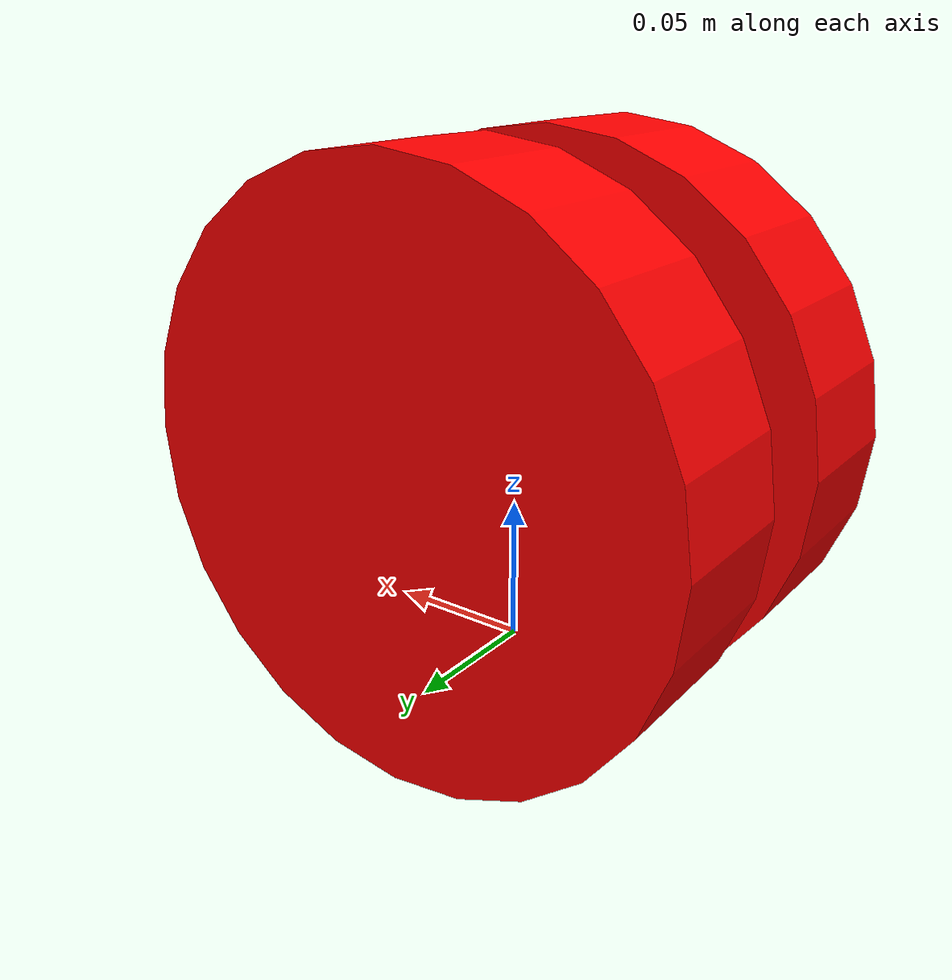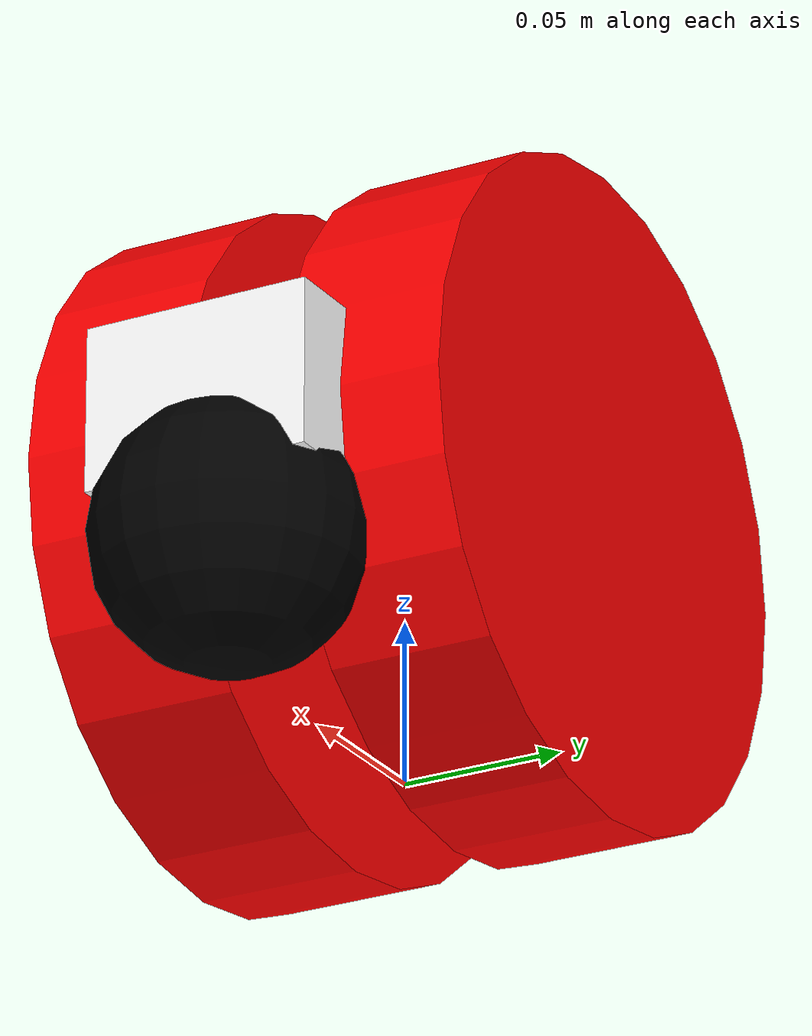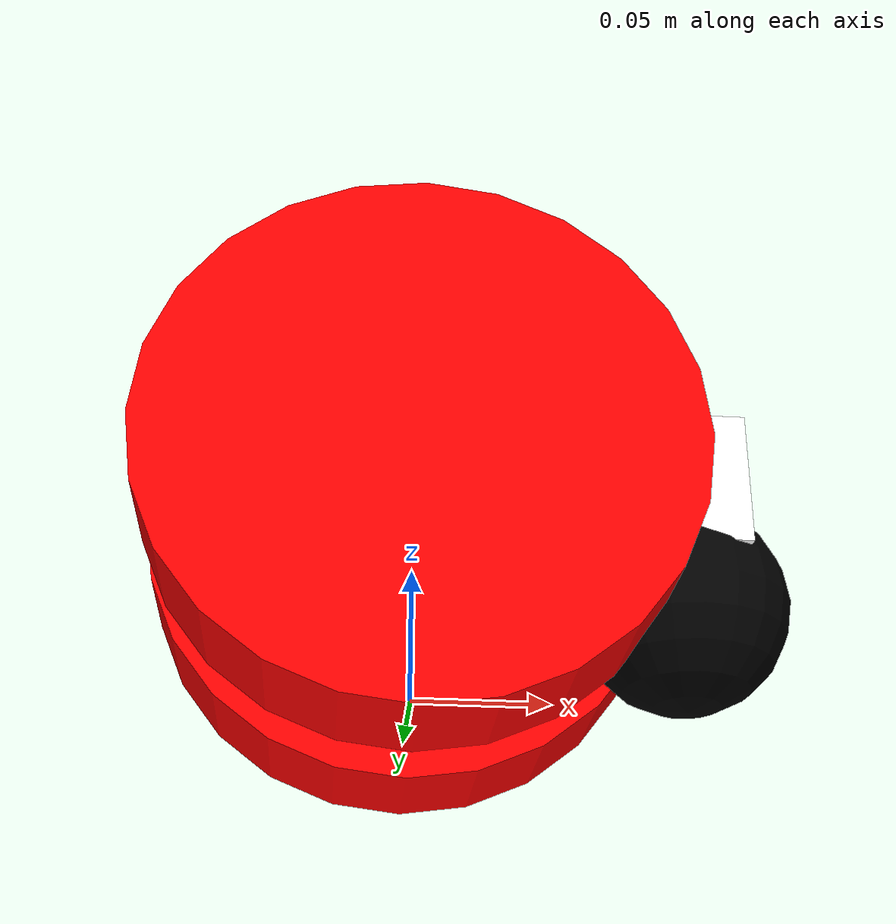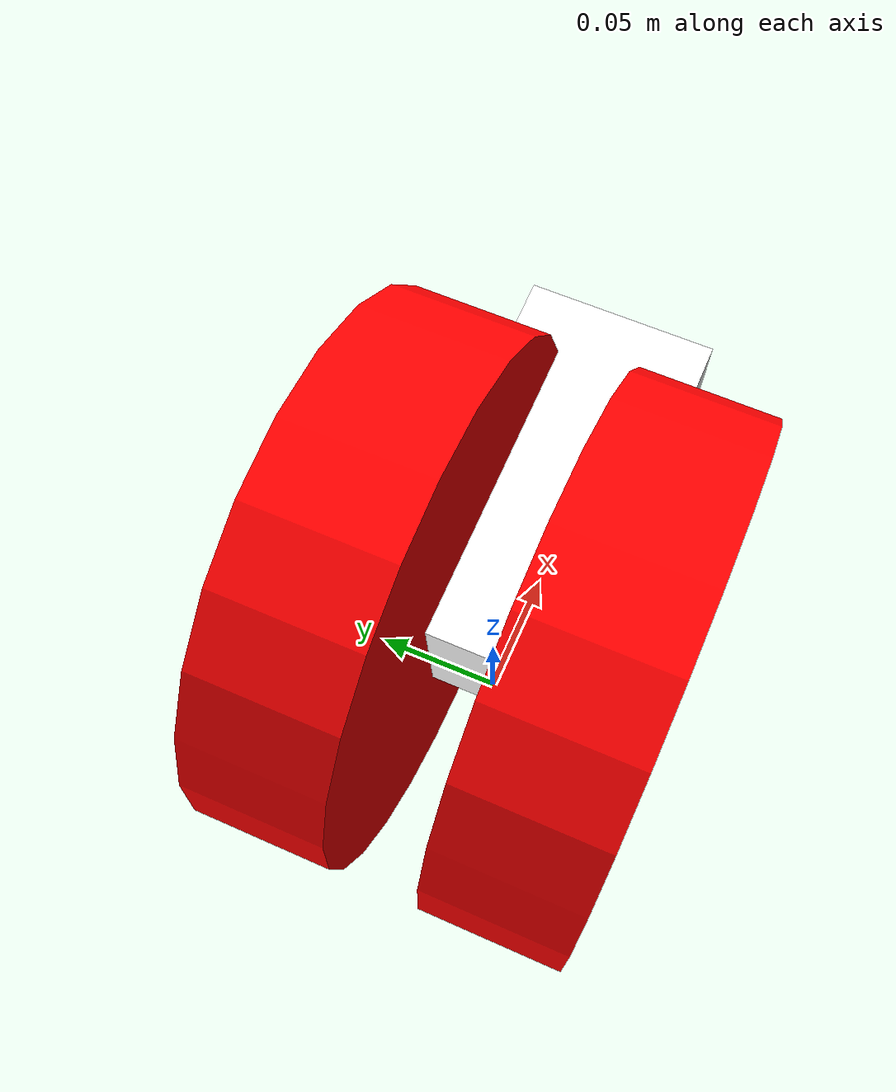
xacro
<?xml version="1.0"?>
<robot name="robo_gazebo" xmlns:xacro="http://ros.org/wiki/xacro">
  <xacro:include filename="$(find gazebo_sim)/urdf/color.xacro"/>
  <xacro:include filename="$(find gazebo_sim)/urdf/wheel_macro.xacro"/>
  <xacro:include filename="$(find gazebo_sim)/urdf/caster_macro.xacro"/>

  <xacro:wheel_macro prefix="left_wheel"  parent="base_link" xyz="-0.05 0.041 0"/>
  <xacro:wheel_macro prefix="right_wheel" parent="base_link" xyz="-0.05 -0.041 0"/>
  <xacro:ball_macro prefix="front_caster" parent="base_link" xyz="0.05 0 -0.03825"/>

  <xacro:property name="x" value="0.14"/>
  <xacro:property name="y" value="0.07"/>
  <xacro:property name="z" value="0.05"/>
  <xacro:property name="mass" value="1.0"/>

  <link name="dummy"/>

  <joint name="base_joint" type="fixed">
    <parent link="dummy"/>
    <child link="base_link"/>
    <origin xyz="0.05 0 0.0765" rpy="0 0 0"/>
  </joint>

  <link name="base_link">

    <inertial>
     <origin xyz="0 0 0" rpy="0 0 0"/>
     <mass value="${mass}"/>
     <inertia ixx="${mass*((y**2)+(z**2))/12}" ixy="0.0" ixz="0.0"
              iyy="${mass*((z**2)+(x**2))/12}" iyz="0.0"
              izz="${mass*((x**2)+(y**2))/12}"/>
    </inertial>

    <visual>
      <origin xyz="0 0 0" rpy="0 0 0" />
      <geometry>
        <box size="${x} ${y} ${z}" />
      </geometry>
      <material name="white" />
    </visual>

    <collision>
     <origin xyz="0 0 0" rpy="0 0 0"/>
     <geometry>
      <box size="${x} ${y} ${z}"/>
     </geometry>
    </collision>

  </link>

  <gazebo reference="base_link">
   <material>Gazebo/Gray</material>
   <gravity>true</gravity>
  </gazebo>

  <gazebo>
    <plugin name="gazebo_ros_control" filename="libgazebo_ros_control.so">
      <robotNamespace>/robot_gazebo</robotNamespace>
      <legacyModeNS>true</legacyModeNS>
    </plugin>
  </gazebo>

</robot>

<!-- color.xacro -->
<robot xmlns:xacro="http://ros.org/wiki/xacro">

  <material name="gray">
    <color rgba="0.5 0.5 0.5 3"/>
  </material>

  <material name="red">
    <color rgba="1.0 0.0 0.0 2"/>
  </material>

  <material name="green">
   <color rgba="0 1.0 0 2"/>
  </material>

  <material name="white">
   <color rgba="1.0 1.0 1.0 2.0"/>
  </material>

  <material name="black">
   <color rgba="0.0 0.0 0.0 2.0"/>
  </material>

</robot>

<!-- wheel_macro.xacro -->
<robot xmlns:xacro="http://ros.org/wiki/xacro">

  <xacro:property name="radius" value="0.1"/>
  <xacro:property name="length" value="0.05"/>
  <xacro:property name="mass" value="0.1"/>

  <xacro:macro name="wheel_macro" params="parent prefix xyz">

    <joint name="${prefix}_joint" type="continuous">
      <origin xyz="${xyz}" rpy="${radians(-90)} 0 0"/>
      <parent link="${parent}"/>
      <child  link="${prefix}_link"/>
      <axis xyz="0 0 1" />
    </joint>

    <transmission name="${prefix}_trans" type="SimpleTransmission">
      <type>transmission_interface/SimpleTransmission</type>
      <joint name="${prefix}_joint">
        <hardwareInterface>hardware_interface/VelocityJointInterface</hardwareInterface>
      </joint>
      <actuator name="${prefix}_motor">
        <mechanicalReduction>1</mechanicalReduction>
      </actuator>
    </transmission>

    <link name="${prefix}_link">
      <inertial>
       <origin xyz="0 0 0" rpy="0 0 0"/>
       <mass value="${mass}"/>
       <inertia ixx="${mass*(3*(radius**2)+(length**2))/12}" ixy="0.0" ixz="0.0"
                iyy="${mass*(3*(radius**2)+(length**2))/12}" iyz="0.0"
                izz="${(mass*(radius**2))/2}"/>
      </inertial>
      <visual>
        <geometry>
          <cylinder radius="${radius}" length="${length}" />
        </geometry>
        <material name="red"/>
      </visual>
      <collision>
       <geometry>
        <cylinder radius="${radius}" length="${length}"/>
       </geometry>
      </collision>
    </link>

    <gazebo reference="${prefix}_link">
     <material>Gazebo/Red</material>
     <mu1 value="1.0"/>
     <mu2 value="1.0"/>
     <kp value="10000000.0" />
     <kd value="1.0" />
    </gazebo>

  </xacro:macro>

</robot>

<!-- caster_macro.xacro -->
<robot xmlns:xacro="http://ros.org/wiki/xacro">

  <xacro:macro name="ball_macro" params="parent prefix xyz">

   <joint name="${prefix}_joint" type="fixed">
     <parent link="${parent}"/>
     <child  link="${prefix}_link"/>
     <origin xyz="${xyz}" rpy="0 0 0"/>
   </joint>

   <link name="${prefix}_link">
    <inertial>
      <origin xyz="0 0 0" rpy="0 0 0"/>
      <mass value="0.2"/>
      <inertia ixx="0.000128" ixy="0.0" ixz="0.0" iyy="0.000128" iyz="0.0" izz="0.000128"/>
    </inertial>
    <visual>
      <origin xyz="0 0 0" rpy="0 0 0" />
      <geometry>
        <sphere radius="0.04" />
      </geometry>
      <material name="black" />
    </visual>
    <collision>
     <origin xyz="0 0 0" rpy="0 0 0"/>
     <geometry>
      <sphere radius="0.04"/>
     </geometry>
     <material name="gray"/>
    </collision>
   </link>

   <gazebo reference="${prefix}_link">
     <material>Gazebo/Green</material>
     <mu1 value="0.0"/>
     <mu2 value="0.0"/>
   </gazebo>

  </xacro:macro>

</robot>
